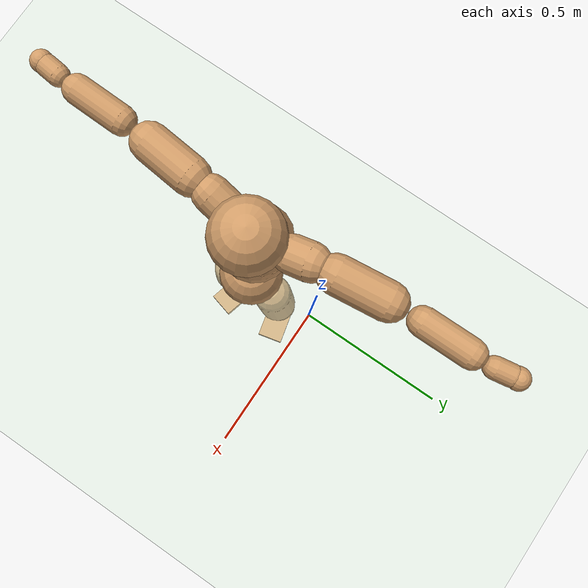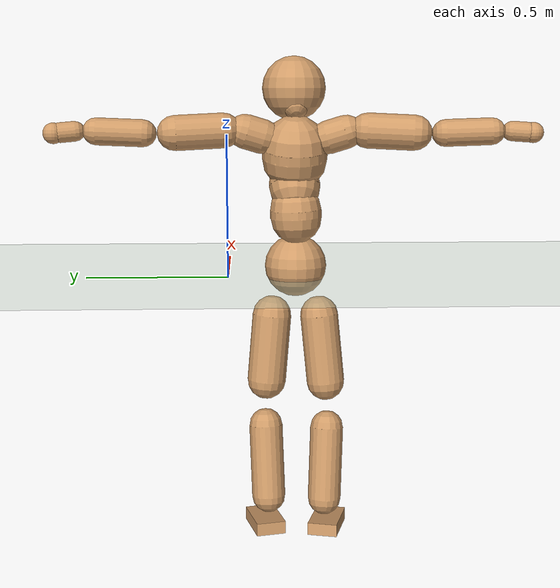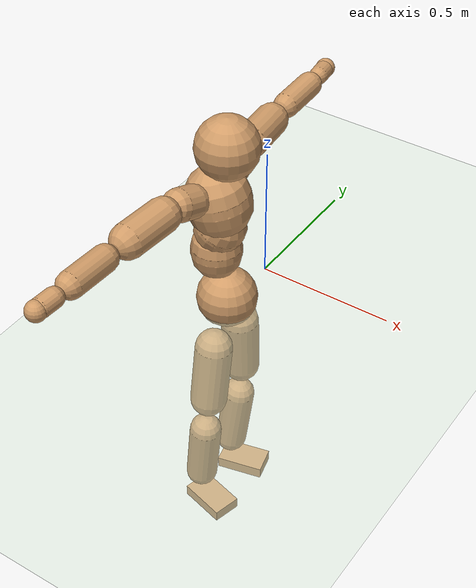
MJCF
<mujoco model="humanoid">
  <compiler coordinate="local"/>
  <default>
    <joint damping="0.0" armature="0.01" stiffness="0.0" limited="true"/>
    <geom conaffinity="1" condim="3" contype="7" margin="0.001" rgba="0.8 0.6 .4 1"/>
  </default>
  <asset>
    <texture type="skybox" builtin="gradient" rgb1=".4 .5 .6" rgb2="0 0 0" width="100" height="100"/>
    <texture builtin="flat" height="1278" mark="cross" markrgb="1 1 1" name="texgeom" random="0.01" rgb1="0.8 0.6 0.4" rgb2="0.8 0.6 0.4" type="cube" width="127"/>
    <texture builtin="checker" height="100" name="texplane" rgb1="0 0 0" rgb2="0.8 0.8 0.8" type="2d" width="100"/>
    <material name="MatPlane" reflectance="0.5" shininess="1" specular="1" texrepeat="60 60" texture="texplane"/>
    <material name="geom" texture="texgeom" texuniform="true"/>
  </asset>
  <worldbody>
    <light cutoff="100" diffuse="1 1 1" dir="-0 0 -1.3" directional="true" exponent="1" pos="0 0 1.3" specular=".1 .1 .1"/>
    <geom conaffinity="1" condim="3" name="floor" pos="0 0 0" rgba="0.8 0.9 0.8 1" size="100 100 .2" type="plane" material="MatPlane"/>
    <body name="Pelvis" pos="-0.0027 -0.2389 0.0426">
      <freejoint name="Pelvis"/>
      <geom type="sphere" contype="1" conaffinity="1" density="500" size="0.1087" pos="0.0000 0.0000 0.0000" name="Pelvis"/>
      <body name="L_Hip" pos="0.0002 0.0776 -0.0985">
        <joint name="L_Hip_x" type="hinge" pos="0 0 0" axis="1 0 0" stiffness="800" damping="80" armature="0.02" range="-180.0000 180.0000"/>
        <joint name="L_Hip_y" type="hinge" pos="0 0 0" axis="0 1 0" stiffness="800" damping="80" armature="0.02" range="-180.0000 180.0000"/>
        <joint name="L_Hip_z" type="hinge" pos="0 0 0" axis="0 0 1" stiffness="800" damping="80" armature="0.02" range="-180.0000 180.0000"/>
        <geom type="capsule" contype="1" conaffinity="1" density="500" fromto="-0.0023 0.0068 -0.0793 -0.0091 0.0270 -0.3173" size="0.0686" name="L_Hip"/>
        <body name="L_Knee" pos="-0.0113 0.0338 -0.3966">
          <joint name="L_Knee_x" type="hinge" pos="0 0 0" axis="1 0 0" stiffness="800" damping="80" armature="0.02" range="-180.0000 180.0000"/>
          <joint name="L_Knee_y" type="hinge" pos="0 0 0" axis="0 1 0" stiffness="800" damping="80" armature="0.02" range="-180.0000 180.0000"/>
          <joint name="L_Knee_z" type="hinge" pos="0 0 0" axis="0 0 1" stiffness="800" damping="80" armature="0.02" range="-180.0000 180.0000"/>
          <geom type="capsule" contype="1" conaffinity="1" density="500" fromto="-0.0100 -0.0029 -0.0861 -0.0401 -0.0116 -0.3445" size="0.0597" name="L_Knee"/>
          <body name="L_Ankle" pos="-0.0501 -0.0146 -0.4306">
            <joint name="L_Ankle_x" type="hinge" pos="0 0 0" axis="1 0 0" stiffness="800" damping="80" armature="0.02" range="-180.0000 180.0000"/>
            <joint name="L_Ankle_y" type="hinge" pos="0 0 0" axis="0 1 0" stiffness="800" damping="80" armature="0.02" range="-180.0000 180.0000"/>
            <joint name="L_Ankle_z" type="hinge" pos="0 0 0" axis="0 0 1" stiffness="800" damping="80" armature="0.02" range="-180.0000 180.0000"/>
            <geom type="box" contype="1" conaffinity="1" density="500" pos="0.0627 0.0149 -0.0300" size="0.0892 0.0531 0.0229" quat="0.9932 0.0000 0.0000 0.1163" name="L_Ankle"/>
            <body name="L_Toe" pos="0.1253 0.0298 -0.06">
              <joint name="L_Toe_x" type="hinge" pos="0 0 0" axis="1 0 0" stiffness="500" damping="50" armature="0.02" range="-180.0000 180.0000"/>
              <joint name="L_Toe_y" type="hinge" pos="0 0 0" axis="0 1 0" stiffness="500" damping="50" armature="0.02" range="-180.0000 180.0000"/>
              <joint name="L_Toe_z" type="hinge" pos="0 0 0" axis="0 0 1" stiffness="500" damping="50" armature="0.02" range="-180.0000 180.0000"/>
              <geom type="box" contype="1" conaffinity="1" density="500" pos="0.0000 0.0000 0.0299" size="0.0011 0.0026 0.0011" quat="0.9925 0.0000 0.0000 0.1219" name="L_Toe"/>
            </body>
          </body>
        </body>
      </body>
      <body name="R_Hip" pos="0.0032 -0.0765 -0.0983">
        <joint name="R_Hip_x" type="hinge" pos="0 0 0" axis="1 0 0" stiffness="800" damping="80" armature="0.02" range="-180.0000 180.0000"/>
        <joint name="R_Hip_y" type="hinge" pos="0 0 0" axis="0 1 0" stiffness="800" damping="80" armature="0.02" range="-180.0000 180.0000"/>
        <joint name="R_Hip_z" type="hinge" pos="0 0 0" axis="0 0 1" stiffness="800" damping="80" armature="0.02" range="-180.0000 180.0000"/>
        <geom type="capsule" contype="1" conaffinity="1" density="500" fromto="-0.0032 -0.0078 -0.0813 -0.0128 -0.0312 -0.3252" size="0.0675" name="R_Hip"/>
        <body name="R_Knee" pos="-0.016 -0.039 -0.4065">
          <joint name="R_Knee_x" type="hinge" pos="0 0 0" axis="1 0 0" stiffness="800" damping="80" armature="0.02" range="-180.0000 180.0000"/>
          <joint name="R_Knee_y" type="hinge" pos="0 0 0" axis="0 1 0" stiffness="800" damping="80" armature="0.02" range="-180.0000 180.0000"/>
          <joint name="R_Knee_z" type="hinge" pos="0 0 0" axis="0 0 1" stiffness="800" damping="80" armature="0.02" range="-180.0000 180.0000"/>
          <geom type="capsule" contype="1" conaffinity="1" density="500" fromto="-0.0098 0.0033 -0.0866 -0.0391 0.0132 -0.3465" size="0.0592" name="R_Knee"/>
          <body name="R_Ankle" pos="-0.0488 0.0165 -0.4331">
            <joint name="R_Ankle_x" type="hinge" pos="0 0 0" axis="1 0 0" stiffness="800" damping="80" armature="0.02" range="-180.0000 180.0000"/>
            <joint name="R_Ankle_y" type="hinge" pos="0 0 0" axis="0 1 0" stiffness="800" damping="80" armature="0.02" range="-180.0000 180.0000"/>
            <joint name="R_Ankle_z" type="hinge" pos="0 0 0" axis="0 0 1" stiffness="800" damping="80" armature="0.02" range="-180.0000 180.0000"/>
            <geom type="box" contype="1" conaffinity="1" density="500" pos="0.0646 -0.0168 -0.0262" size="0.0898 0.0531 0.0226" quat="0.9919 0.0000 0.0000 -0.1271" name="R_Ankle"/>
            <body name="R_Toe" pos="0.1293 -0.0337 -0.0523">
              <joint name="R_Toe_x" type="hinge" pos="0 0 0" axis="1 0 0" stiffness="500" damping="50" armature="0.02" range="-180.0000 180.0000"/>
              <joint name="R_Toe_y" type="hinge" pos="0 0 0" axis="0 1 0" stiffness="500" damping="50" armature="0.02" range="-180.0000 180.0000"/>
              <joint name="R_Toe_z" type="hinge" pos="0 0 0" axis="0 0 1" stiffness="500" damping="50" armature="0.02" range="-180.0000 180.0000"/>
              <geom type="box" contype="1" conaffinity="1" density="500" pos="0.0000 0.0000 0.0272" size="0.0011 0.0026 0.0012" quat="0.9930 0.0000 0.0000 -0.1182" name="R_Toe"/>
            </body>
          </body>
        </body>
      </body>
      <body name="Torso" pos="-0.0409 -0.0024 0.1201">
        <joint name="Torso_x" type="hinge" pos="0 0 0" axis="1 0 0" stiffness="1000" damping="100" armature="0.02" range="-180.0000 180.0000"/>
        <joint name="Torso_y" type="hinge" pos="0 0 0" axis="0 1 0" stiffness="1000" damping="100" armature="0.02" range="-180.0000 180.0000"/>
        <joint name="Torso_z" type="hinge" pos="0 0 0" axis="0 0 1" stiffness="1000" damping="100" armature="0.02" range="-180.0000 180.0000"/>
        <geom type="capsule" contype="1" conaffinity="1" density="500" fromto="-0.0023 0.0038 0.0825 -0.0016 0.0025 0.0550" size="0.0897" name="Torso"/>
        <body name="Spine" pos="-0.0039 0.0064 0.1375">
          <joint name="Spine_x" type="hinge" pos="0 0 0" axis="1 0 0" stiffness="1000" damping="100" armature="0.02" range="-180.0000 180.0000"/>
          <joint name="Spine_y" type="hinge" pos="0 0 0" axis="0 1 0" stiffness="1000" damping="100" armature="0.02" range="-180.0000 180.0000"/>
          <joint name="Spine_z" type="hinge" pos="0 0 0" axis="0 0 1" stiffness="1000" damping="100" armature="0.02" range="-180.0000 180.0000"/>
          <geom type="capsule" contype="1" conaffinity="1" density="500" fromto="0.0184 0.0007 0.0344 0.0123 0.0005 0.0229" size="0.0892" name="Spine"/>
          <body name="Chest" pos="0.0307 0.0012 0.0574">
            <joint name="Chest_x" type="hinge" pos="0 0 0" axis="1 0 0" stiffness="1000" damping="100" armature="0.02" range="-180.0000 180.0000"/>
            <joint name="Chest_y" type="hinge" pos="0 0 0" axis="0 1 0" stiffness="1000" damping="100" armature="0.02" range="-180.0000 180.0000"/>
            <joint name="Chest_z" type="hinge" pos="0 0 0" axis="0 0 1" stiffness="1000" damping="100" armature="0.02" range="-180.0000 180.0000"/>
            <geom type="capsule" contype="1" conaffinity="1" density="500" fromto="-0.0249 -0.0014 0.0992 -0.0166 -0.0009 0.0661" size="0.1135" name="Chest"/>
            <body name="Neck" pos="-0.0442 -0.0038 0.2333">
              <joint name="Neck_x" type="hinge" pos="0 0 0" axis="1 0 0" stiffness="500" damping="50" armature="0.02" range="-180.0000 180.0000"/>
              <joint name="Neck_y" type="hinge" pos="0 0 0" axis="0 1 0" stiffness="500" damping="50" armature="0.02" range="-180.0000 180.0000"/>
              <joint name="Neck_z" type="hinge" pos="0 0 0" axis="0 0 1" stiffness="500" damping="50" armature="0.02" range="-180.0000 180.0000"/>
              <geom type="capsule" contype="1" conaffinity="1" density="500" fromto="0.0115 0.0008 0.0138 0.0462 0.0033 0.0554" size="0.0486" name="Neck"/>
              <body name="Head" pos="0.0577 0.0042 0.0692">
                <joint name="Head_x" type="hinge" pos="0 0 0" axis="1 0 0" stiffness="500" damping="50" armature="0.02" range="-180.0000 180.0000"/>
                <joint name="Head_y" type="hinge" pos="0 0 0" axis="0 1 0" stiffness="500" damping="50" armature="0.02" range="-180.0000 180.0000"/>
                <joint name="Head_z" type="hinge" pos="0 0 0" axis="0 0 1" stiffness="500" damping="50" armature="0.02" range="-180.0000 180.0000"/>
                <geom type="sphere" contype="1" conaffinity="1" density="500" size="0.1098" pos="0.0000 0.0000 0.0000" name="Head"/>
              </body>
            </body>
            <body name="L_Thorax" pos="-0.0375 0.0897 0.1329">
              <joint name="L_Thorax_x" type="hinge" pos="0 0 0" axis="1 0 0" stiffness="500" damping="50" armature="0.02" range="-180.0000 180.0000"/>
              <joint name="L_Thorax_y" type="hinge" pos="0 0 0" axis="0 1 0" stiffness="500" damping="50" armature="0.02" range="-180.0000 180.0000"/>
              <joint name="L_Thorax_z" type="hinge" pos="0 0 0" axis="0 0 1" stiffness="500" damping="50" armature="0.02" range="-180.0000 180.0000"/>
              <geom type="capsule" contype="1" conaffinity="1" density="500" fromto="-0.0030 0.0199 0.0062 -0.0120 0.0798 0.0246" size="0.0596" name="L_Thorax"/>
              <body name="L_Shoulder" pos="-0.015 0.0997 0.0308">
                <joint name="L_Shoulder_x" type="hinge" pos="0 0 0" axis="1 0 0" stiffness="500" damping="50" armature="0.02" range="-720.0000 720.0000"/>
                <joint name="L_Shoulder_y" type="hinge" pos="0 0 0" axis="0 1 0" stiffness="500" damping="50" armature="0.02" range="-720.0000 720.0000"/>
                <joint name="L_Shoulder_z" type="hinge" pos="0 0 0" axis="0 0 1" stiffness="500" damping="50" armature="0.02" range="-720.0000 720.0000"/>
                <geom type="capsule" contype="1" conaffinity="1" density="500" fromto="-0.0066 0.0543 -0.0025 -0.0265 0.2171 -0.0102" size="0.0604" name="L_Shoulder"/>
                <body name="L_Elbow" pos="-0.0331 0.2714 -0.0127">
                  <joint name="L_Elbow_x" type="hinge" pos="0 0 0" axis="1 0 0" stiffness="500" damping="50" armature="0.02" range="-720.0000 720.0000"/>
                  <joint name="L_Elbow_y" type="hinge" pos="0 0 0" axis="0 1 0" stiffness="500" damping="50" armature="0.02" range="-720.0000 720.0000"/>
                  <joint name="L_Elbow_z" type="hinge" pos="0 0 0" axis="0 0 1" stiffness="500" damping="50" armature="0.02" range="-720.0000 720.0000"/>
                  <geom type="capsule" contype="1" conaffinity="1" density="500" fromto="0.0001 0.0521 0.0022 0.0002 0.2083 0.0086" size="0.0461" name="L_Elbow"/>
                  <body name="L_Wrist" pos="0.0003 0.2604 0.0108">
                    <joint name="L_Wrist_x" type="hinge" pos="0 0 0" axis="1 0 0" stiffness="300" damping="30" armature="0.02" range="-180.0000 180.0000"/>
                    <joint name="L_Wrist_y" type="hinge" pos="0 0 0" axis="0 1 0" stiffness="300" damping="30" armature="0.02" range="-180.0000 180.0000"/>
                    <joint name="L_Wrist_z" type="hinge" pos="0 0 0" axis="0 0 1" stiffness="300" damping="30" armature="0.02" range="-180.0000 180.0000"/>
                    <geom type="capsule" contype="1" conaffinity="1" density="500" fromto="-0.0032 0.0177 -0.0015 -0.0127 0.0707 -0.0061" size="0.034" name="L_Wrist"/>
                    <body name="L_Hand" pos="-0.0159 0.0884 -0.0077">
                      <joint name="L_Hand_x" type="hinge" pos="0 0 0" axis="1 0 0" stiffness="300" damping="30" armature="0.02" range="-180.0000 180.0000"/>
                      <joint name="L_Hand_y" type="hinge" pos="0 0 0" axis="0 1 0" stiffness="300" damping="30" armature="0.02" range="-180.0000 180.0000"/>
                      <joint name="L_Hand_z" type="hinge" pos="0 0 0" axis="0 0 1" stiffness="300" damping="30" armature="0.02" range="-180.0000 180.0000"/>
                      <geom type="sphere" contype="1" conaffinity="1" density="500" size="0.0355" pos="0.0000 0.0000 0.0000" name="L_Hand"/>
                    </body>
                  </body>
                </body>
              </body>
            </body>
            <body name="R_Thorax" pos="-0.0427 -0.0928 0.1299">
              <joint name="R_Thorax_x" type="hinge" pos="0 0 0" axis="1 0 0" stiffness="500" damping="50" armature="0.02" range="-180.0000 180.0000"/>
              <joint name="R_Thorax_y" type="hinge" pos="0 0 0" axis="0 1 0" stiffness="500" damping="50" armature="0.02" range="-180.0000 180.0000"/>
              <joint name="R_Thorax_z" type="hinge" pos="0 0 0" axis="0 0 1" stiffness="500" damping="50" armature="0.02" range="-180.0000 180.0000"/>
              <geom type="capsule" contype="1" conaffinity="1" density="500" fromto="-0.0026 -0.0207 0.0065 -0.0103 -0.0829 0.0260" size="0.058" name="R_Thorax"/>
              <body name="R_Shoulder" pos="-0.0129 -0.1036 0.0325">
                <joint name="R_Shoulder_x" type="hinge" pos="0 0 0" axis="1 0 0" stiffness="500" damping="50" armature="0.02" range="-720.0000 720.0000"/>
                <joint name="R_Shoulder_y" type="hinge" pos="0 0 0" axis="0 1 0" stiffness="500" damping="50" armature="0.02" range="-720.0000 720.0000"/>
                <joint name="R_Shoulder_z" type="hinge" pos="0 0 0" axis="0 0 1" stiffness="500" damping="50" armature="0.02" range="-720.0000 720.0000"/>
                <geom type="capsule" contype="1" conaffinity="1" density="500" fromto="-0.0058 -0.0525 -0.0023 -0.0230 -0.2102 -0.0093" size="0.0612" name="R_Shoulder"/>
                <body name="R_Elbow" pos="-0.0288 -0.2627 -0.0116">
                  <joint name="R_Elbow_x" type="hinge" pos="0 0 0" axis="1 0 0" stiffness="500" damping="50" armature="0.02" range="-720.0000 720.0000"/>
                  <joint name="R_Elbow_y" type="hinge" pos="0 0 0" axis="0 1 0" stiffness="500" damping="50" armature="0.02" range="-720.0000 720.0000"/>
                  <joint name="R_Elbow_z" type="hinge" pos="0 0 0" axis="0 0 1" stiffness="500" damping="50" armature="0.02" range="-720.0000 720.0000"/>
                  <geom type="capsule" contype="1" conaffinity="1" density="500" fromto="-0.0009 -0.0526 0.0018 -0.0036 -0.2105 0.0073" size="0.0464" name="R_Elbow"/>
                  <body name="R_Wrist" pos="-0.0044 -0.2632 0.0092">
                    <joint name="R_Wrist_x" type="hinge" pos="0 0 0" axis="1 0 0" stiffness="300" damping="30" armature="0.02" range="-180.0000 180.0000"/>
                    <joint name="R_Wrist_y" type="hinge" pos="0 0 0" axis="0 1 0" stiffness="300" damping="30" armature="0.02" range="-180.0000 180.0000"/>
                    <joint name="R_Wrist_z" type="hinge" pos="0 0 0" axis="0 0 1" stiffness="300" damping="30" armature="0.02" range="-180.0000 180.0000"/>
                    <geom type="capsule" contype="1" conaffinity="1" density="500" fromto="-0.0021 -0.0175 -0.0012 -0.0084 -0.0700 -0.0047" size="0.0344" name="R_Wrist"/>
                    <body name="R_Hand" pos="-0.0105 -0.0875 -0.0058">
                      <joint name="R_Hand_x" type="hinge" pos="0 0 0" axis="1 0 0" stiffness="300" damping="30" armature="0.02" range="-180.0000 180.0000"/>
                      <joint name="R_Hand_y" type="hinge" pos="0 0 0" axis="0 1 0" stiffness="300" damping="30" armature="0.02" range="-180.0000 180.0000"/>
                      <joint name="R_Hand_z" type="hinge" pos="0 0 0" axis="0 0 1" stiffness="300" damping="30" armature="0.02" range="-180.0000 180.0000"/>
                      <geom type="sphere" contype="1" conaffinity="1" density="500" size="0.0353" pos="0.0000 0.0000 0.0000" name="R_Hand"/>
                    </body>
                  </body>
                </body>
              </body>
            </body>
          </body>
        </body>
      </body>
    </body>
  </worldbody>
  <actuator>
    <motor name="L_Hip_x" joint="L_Hip_x" gear="500"/>
    <motor name="L_Hip_y" joint="L_Hip_y" gear="500"/>
    <motor name="L_Hip_z" joint="L_Hip_z" gear="500"/>
    <motor name="L_Knee_x" joint="L_Knee_x" gear="500"/>
    <motor name="L_Knee_y" joint="L_Knee_y" gear="500"/>
    <motor name="L_Knee_z" joint="L_Knee_z" gear="500"/>
    <motor name="L_Ankle_x" joint="L_Ankle_x" gear="500"/>
    <motor name="L_Ankle_y" joint="L_Ankle_y" gear="500"/>
    <motor name="L_Ankle_z" joint="L_Ankle_z" gear="500"/>
    <motor name="L_Toe_x" joint="L_Toe_x" gear="500"/>
    <motor name="L_Toe_y" joint="L_Toe_y" gear="500"/>
    <motor name="L_Toe_z" joint="L_Toe_z" gear="500"/>
    <motor name="R_Hip_x" joint="R_Hip_x" gear="500"/>
    <motor name="R_Hip_y" joint="R_Hip_y" gear="500"/>
    <motor name="R_Hip_z" joint="R_Hip_z" gear="500"/>
    <motor name="R_Knee_x" joint="R_Knee_x" gear="500"/>
    <motor name="R_Knee_y" joint="R_Knee_y" gear="500"/>
    <motor name="R_Knee_z" joint="R_Knee_z" gear="500"/>
    <motor name="R_Ankle_x" joint="R_Ankle_x" gear="500"/>
    <motor name="R_Ankle_y" joint="R_Ankle_y" gear="500"/>
    <motor name="R_Ankle_z" joint="R_Ankle_z" gear="500"/>
    <motor name="R_Toe_x" joint="R_Toe_x" gear="500"/>
    <motor name="R_Toe_y" joint="R_Toe_y" gear="500"/>
    <motor name="R_Toe_z" joint="R_Toe_z" gear="500"/>
    <motor name="Torso_x" joint="Torso_x" gear="500"/>
    <motor name="Torso_y" joint="Torso_y" gear="500"/>
    <motor name="Torso_z" joint="Torso_z" gear="500"/>
    <motor name="Spine_x" joint="Spine_x" gear="500"/>
    <motor name="Spine_y" joint="Spine_y" gear="500"/>
    <motor name="Spine_z" joint="Spine_z" gear="500"/>
    <motor name="Chest_x" joint="Chest_x" gear="500"/>
    <motor name="Chest_y" joint="Chest_y" gear="500"/>
    <motor name="Chest_z" joint="Chest_z" gear="500"/>
    <motor name="Neck_x" joint="Neck_x" gear="500"/>
    <motor name="Neck_y" joint="Neck_y" gear="500"/>
    <motor name="Neck_z" joint="Neck_z" gear="500"/>
    <motor name="Head_x" joint="Head_x" gear="500"/>
    <motor name="Head_y" joint="Head_y" gear="500"/>
    <motor name="Head_z" joint="Head_z" gear="500"/>
    <motor name="L_Thorax_x" joint="L_Thorax_x" gear="500"/>
    <motor name="L_Thorax_y" joint="L_Thorax_y" gear="500"/>
    <motor name="L_Thorax_z" joint="L_Thorax_z" gear="500"/>
    <motor name="L_Shoulder_x" joint="L_Shoulder_x" gear="500"/>
    <motor name="L_Shoulder_y" joint="L_Shoulder_y" gear="500"/>
    <motor name="L_Shoulder_z" joint="L_Shoulder_z" gear="500"/>
    <motor name="L_Elbow_x" joint="L_Elbow_x" gear="500"/>
    <motor name="L_Elbow_y" joint="L_Elbow_y" gear="500"/>
    <motor name="L_Elbow_z" joint="L_Elbow_z" gear="500"/>
    <motor name="L_Wrist_x" joint="L_Wrist_x" gear="500"/>
    <motor name="L_Wrist_y" joint="L_Wrist_y" gear="500"/>
    <motor name="L_Wrist_z" joint="L_Wrist_z" gear="500"/>
    <motor name="L_Hand_x" joint="L_Hand_x" gear="500"/>
    <motor name="L_Hand_y" joint="L_Hand_y" gear="500"/>
    <motor name="L_Hand_z" joint="L_Hand_z" gear="500"/>
    <motor name="R_Thorax_x" joint="R_Thorax_x" gear="500"/>
    <motor name="R_Thorax_y" joint="R_Thorax_y" gear="500"/>
    <motor name="R_Thorax_z" joint="R_Thorax_z" gear="500"/>
    <motor name="R_Shoulder_x" joint="R_Shoulder_x" gear="500"/>
    <motor name="R_Shoulder_y" joint="R_Shoulder_y" gear="500"/>
    <motor name="R_Shoulder_z" joint="R_Shoulder_z" gear="500"/>
    <motor name="R_Elbow_x" joint="R_Elbow_x" gear="500"/>
    <motor name="R_Elbow_y" joint="R_Elbow_y" gear="500"/>
    <motor name="R_Elbow_z" joint="R_Elbow_z" gear="500"/>
    <motor name="R_Wrist_x" joint="R_Wrist_x" gear="500"/>
    <motor name="R_Wrist_y" joint="R_Wrist_y" gear="500"/>
    <motor name="R_Wrist_z" joint="R_Wrist_z" gear="500"/>
    <motor name="R_Hand_x" joint="R_Hand_x" gear="500"/>
    <motor name="R_Hand_y" joint="R_Hand_y" gear="500"/>
    <motor name="R_Hand_z" joint="R_Hand_z" gear="500"/>
  </actuator>
  <contact>
    <exclude body1="Torso" body2="Chest"/>
    <exclude body1="Head" body2="Chest"/>
    <exclude body1="R_Knee" body2="R_Toe"/>
    <exclude body1="R_Knee" body2="L_Ankle"/>
    <exclude body1="R_Knee" body2="L_Toe"/>
    <exclude body1="L_Knee" body2="L_Toe"/>
    <exclude body1="L_Knee" body2="R_Ankle"/>
    <exclude body1="L_Knee" body2="R_Toe"/>
    <exclude body1="L_Shoulder" body2="Chest"/>
    <exclude body1="R_Shoulder" body2="Chest"/>
  </contact>
  <sensor/>
  <size njmax="700" nconmax="700"/>
</mujoco>
